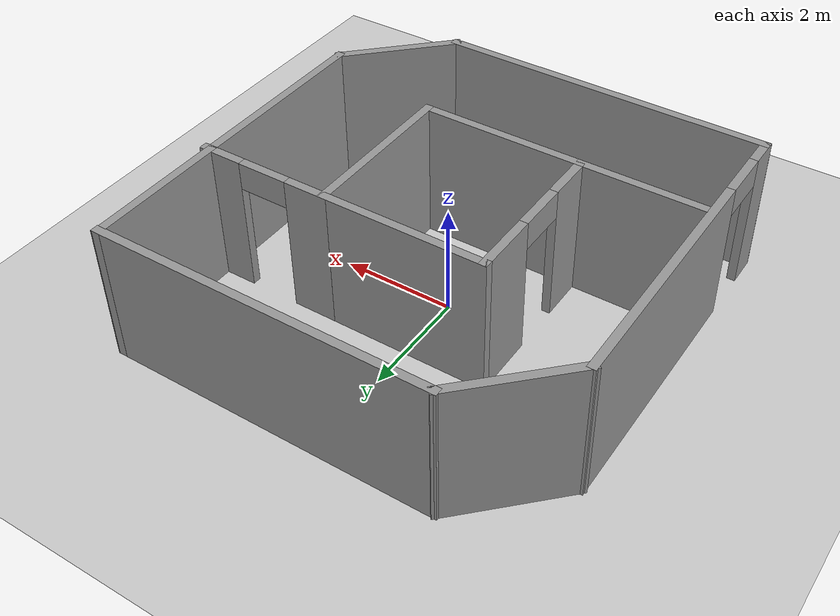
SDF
<sdf version="1.6">
 <world name="default">
  <light name="sun" type="directional">
   <pose>0 0 15 0 -0 0</pose>
   <diffuse>1 1 1 1</diffuse>
   <specular>0.1 0.1 0.1 1</specular>
   <attenuation>
    <range>1000</range>
    <constant>0.9</constant>
    <linear>0.01</linear>
    <quadratic>0.001</quadratic>
   </attenuation>
   <direction>-0.5 0.5 -1</direction>
  </light>
  <model name="ground_plane">
   <static>1</static>
   <link name="link">
    <collision name="collision">
     <geometry><plane><normal>0 0 1</normal><size>100 100</size></plane></geometry>
     <surface><friction><ode><mu>100</mu><mu2>50</mu2></ode></friction></surface>
    </collision>
    <visual name="visual">
     <transparency>1</transparency>
     <cast_shadows>0</cast_shadows>
     <geometry><plane><normal>0 0 1</normal><size>100 100</size></plane></geometry>
     <material>
      <script><uri>file://media/materials/scripts/gazebo.material</uri><name>Gazebo/Grey</name></script>
     </material>
    </visual>
   </link>
  </model>
  <gravity>0 0 -9.8</gravity>
  <magnetic_field>6e-06 2.3e-05 -4.2e-05</magnetic_field>
  <atmosphere type="adiabatic"/>
  <physics name="default_physics" default="0" type="ode">
   <max_step_size>0.001</max_step_size>
   <real_time_factor>1</real_time_factor>
   <real_time_update_rate>1000</real_time_update_rate>
  </physics>
  <scene><ambient>0.4 0.4 0.4 1</ambient><background>0.7 0.7 0.7 1</background><shadows>1</shadows></scene>
  <spherical_coordinates>
   <surface_model>EARTH_WGS84</surface_model>
   <latitude_deg>0</latitude_deg>
   <longitude_deg>0</longitude_deg>
   <elevation>0</elevation>
   <heading_deg>0</heading_deg>
  </spherical_coordinates>
  <model name="room">
   <pose>0.070263 -0.0221 0 0 -0 0</pose>
   <link name="Wall_0">
    <pose>-3.70428 -0.737462 0 0 0 -1.5708</pose>
    <visual name="Wall_0_Visual_0">
     <pose>-0.727979 0 1.25 0 -0 0</pose>
     <geometry><box><size>4.54404 0.15 2.5</size></box></geometry>
     <material>
      <script><uri>file://media/materials/scripts/gazebo.material</uri><name>Gazebo/Grey</name></script>
      <ambient>1 1 1 1</ambient>
     </material>
    </visual>
    <collision name="Wall_0_Collision_0">
     <geometry><box><size>4.54404 0.15 2.5</size></box></geometry>
     <pose>-0.727979 0 1.25 0 -0 0</pose>
    </collision>
    <visual name="Wall_0_Visual_1">
     <pose>2.72202 0 1.25 0 -0 0</pose>
     <geometry><box><size>0.555958 0.15 2.5</size></box></geometry>
     <material>
      <script><uri>file://media/materials/scripts/gazebo.material</uri><name>Gazebo/Grey</name></script>
      <ambient>1 1 1 1</ambient>
     </material>
    </visual>
    <collision name="Wall_0_Collision_1">
     <geometry><box><size>0.555958 0.15 2.5</size></box></geometry>
     <pose>2.72202 0 1.25 0 -0 0</pose>
    </collision>
    <visual name="Wall_0_Visual_2">
     <pose>1.99404 0 2.25 0 -0 0</pose>
     <geometry><box><size>0.9 0.15 0.5</size></box></geometry>
     <material>
      <script><uri>file://media/materials/scripts/gazebo.material</uri><name>Gazebo/Grey</name></script>
      <ambient>1 1 1 1</ambient>
     </material>
    </visual>
    <collision name="Wall_0_Collision_2">
     <geometry><box><size>0.9 0.15 0.5</size></box></geometry>
     <pose>1.99404 0 2.25 0 -0 0</pose>
    </collision>
   </link>
   <link name="Wall_1">
    <collision name="Wall_1_Collision">
     <geometry><box><size>6 0.15 2.5</size></box></geometry>
     <pose>0 0 1.25 0 -0 0</pose>
    </collision>
    <visual name="Wall_1_Visual">
     <pose>0 0 1.25 0 -0 0</pose>
     <geometry><box><size>6 0.15 2.5</size></box></geometry>
     <material>
      <script><uri>file://media/materials/scripts/gazebo.material</uri><name>Gazebo/Grey</name></script>
      <ambient>1 1 1 1</ambient>
     </material>
    </visual>
    <pose>-0.779277 -3.67246 0 0 -0 0</pose>
   </link>
   <link name="Wall_10">
    <collision name="Wall_10_Collision">
     <geometry><box><size>3 0.15 2.5</size></box></geometry>
     <pose>0 0 1.25 0 -0 0</pose>
    </collision>
    <visual name="Wall_10_Visual">
     <pose>0 0 1.25 0 -0 0</pose>
     <geometry><box><size>3 0.15 2.5</size></box></geometry>
     <material>
      <script><uri>file://media/materials/scripts/gazebo.material</uri><name>Gazebo/Grey</name></script>
      <ambient>1 1 1 1</ambient>
     </material>
    </visual>
    <pose>1.40283 -0.198611 0 0 -0 1.5708</pose>
   </link>
   <link name="Wall_11">
    <collision name="Wall_11_Collision">
     <geometry><box><size>3 0.15 2.5</size></box></geometry>
     <pose>0 0 1.25 0 -0 0</pose>
    </collision>
    <visual name="Wall_11_Visual">
     <pose>0 0 1.25 0 -0 0</pose>
     <geometry><box><size>3 0.15 2.5</size></box></geometry>
     <material>
      <script><uri>file://media/materials/scripts/gazebo.material</uri><name>Gazebo/Grey</name></script>
      <ambient>1 1 1 1</ambient>
     </material>
    </visual>
    <pose>-0.039657 1.22639 0 0 -0 3.14159</pose>
   </link>
   <link name="Wall_13">
    <collision name="Wall_13_Collision">
     <geometry><box><size>2.25 0.15 2.5</size></box></geometry>
     <pose>0 0 1.25 0 -0 0</pose>
    </collision>
    <visual name="Wall_13_Visual">
     <pose>0 0 1.25 0 -0 0</pose>
     <geometry><box><size>2.25 0.15 2.5</size></box></geometry>
     <material>
      <script><uri>file://media/materials/scripts/gazebo.material</uri><name>Gazebo/Grey</name></script>
      <ambient>1 1 1 1</ambient>
     </material>
    </visual>
    <pose>-2.51466 -1.62361 0 0 -0 0</pose>
   </link>
   <link name="Wall_15">
    <pose>2.56034 1.22639 0 0 -0 0</pose>
    <visual name="Wall_15_Visual_0">
     <pose>-0.851143 0 1.25 0 -0 0</pose>
     <geometry><box><size>0.797714 0.15 2.5</size></box></geometry>
     <material>
      <script><uri>file://media/materials/scripts/gazebo.material</uri><name>Gazebo/Grey</name></script>
      <ambient>1 1 1 1</ambient>
     </material>
    </visual>
    <collision name="Wall_15_Collision_0">
     <geometry><box><size>0.797714 0.15 2.5</size></box></geometry>
     <pose>-0.851143 0 1.25 0 -0 0</pose>
    </collision>
    <visual name="Wall_15_Visual_1">
     <pose>0.848857 0 1.25 0 -0 0</pose>
     <geometry><box><size>0.802286 0.15 2.5</size></box></geometry>
     <material>
      <script><uri>file://media/materials/scripts/gazebo.material</uri><name>Gazebo/Grey</name></script>
      <ambient>1 1 1 1</ambient>
     </material>
    </visual>
    <collision name="Wall_15_Collision_1">
     <geometry><box><size>0.802286 0.15 2.5</size></box></geometry>
     <pose>0.848857 0 1.25 0 -0 0</pose>
    </collision>
    <visual name="Wall_15_Visual_2">
     <pose>-0.002286 0 2.25 0 -0 0</pose>
     <geometry><box><size>0.9 0.15 0.5</size></box></geometry>
     <material>
      <script><uri>file://media/materials/scripts/gazebo.material</uri><name>Gazebo/Grey</name></script>
      <ambient>1 1 1 1</ambient>
     </material>
    </visual>
    <collision name="Wall_15_Collision_2">
     <geometry><box><size>0.9 0.15 0.5</size></box></geometry>
     <pose>-0.002286 0 2.25 0 -0 0</pose>
    </collision>
   </link>
   <link name="Wall_2">
    <collision name="Wall_2_Collision">
     <geometry><box><size>2.26945 0.15 2.5</size></box></geometry>
     <pose>0 0 1.25 0 -0 0</pose>
    </collision>
    <visual name="Wall_2_Visual">
     <pose>0 0 1.25 0 -0 0</pose>
     <geometry><box><size>2.26945 0.15 2.5</size></box></geometry>
     <material>
      <script><uri>file://media/materials/scripts/gazebo.material</uri><name>Gazebo/Grey</name></script>
      <ambient>1 1 1 1</ambient>
     </material>
    </visual>
    <pose>2.89693 -2.925 0 0 -0 0.782899</pose>
   </link>
   <link name="Wall_3">
    <collision name="Wall_3_Collision">
     <geometry><box><size>6 0.15 2.5</size></box></geometry>
     <pose>0 0 1.25 0 -0 0</pose>
    </collision>
    <visual name="Wall_3_Visual">
     <pose>0 0 1.25 0 -0 0</pose>
     <geometry><box><size>6 0.15 2.5</size></box></geometry>
     <material>
      <script><uri>file://media/materials/scripts/gazebo.material</uri><name>Gazebo/Grey</name></script>
      <ambient>1 1 1 1</ambient>
     </material>
    </visual>
    <pose>3.64814 0.747462 0 0 -0 1.5708</pose>
   </link>
   <link name="Wall_4">
    <collision name="Wall_4_Collision">
     <geometry><box><size>6.03498 0.15 2.5</size></box></geometry>
     <pose>0 0 1.25 0 -0 0</pose>
    </collision>
    <visual name="Wall_4_Visual">
     <pose>0 0 1.25 0 -0 0</pose>
     <geometry><box><size>6.03498 0.15 2.5</size></box></geometry>
     <material>
      <script><uri>file://media/materials/scripts/gazebo.material</uri><name>Gazebo/Grey</name></script>
      <ambient>1 1 1 1</ambient>
     </material>
    </visual>
    <pose>0.723137 3.67246 0 0 -0 3.14159</pose>
   </link>
   <link name="Wall_5">
    <collision name="Wall_5_Collision">
     <geometry><box><size>2.25 0.15 2.5</size></box></geometry>
     <pose>0 0 1.25 0 -0 0</pose>
    </collision>
    <visual name="Wall_5_Visual">
     <pose>0 0 1.25 0 -0 0</pose>
     <geometry><box><size>2.25 0.15 2.5</size></box></geometry>
     <material>
      <script><uri>file://media/materials/scripts/gazebo.material</uri><name>Gazebo/Grey</name></script>
      <ambient>1 1 1 1</ambient>
     </material>
    </visual>
    <pose>-2.96182 2.93 0 0 0 -2.35619</pose>
   </link>
   <link name="Wall_8">
    <pose>-1.46466 -0.198611 0 0 0 -1.5708</pose>
    <visual name="Wall_8_Visual_0">
     <pose>-0.915368 0 1.25 0 -0 0</pose>
     <geometry><box><size>1.16926 0.15 2.5</size></box></geometry>
     <material>
      <script><uri>file://media/materials/scripts/gazebo.material</uri><name>Gazebo/Grey</name></script>
      <ambient>1 1 1 1</ambient>
     </material>
    </visual>
    <collision name="Wall_8_Collision_0">
     <geometry><box><size>1.16926 0.15 2.5</size></box></geometry>
     <pose>-0.915368 0 1.25 0 -0 0</pose>
    </collision>
    <visual name="Wall_8_Visual_1">
     <pose>1.03463 0 1.25 0 -0 0</pose>
     <geometry><box><size>0.930735 0.15 2.5</size></box></geometry>
     <material>
      <script><uri>file://media/materials/scripts/gazebo.material</uri><name>Gazebo/Grey</name></script>
      <ambient>1 1 1 1</ambient>
     </material>
    </visual>
    <collision name="Wall_8_Collision_1">
     <geometry><box><size>0.930735 0.15 2.5</size></box></geometry>
     <pose>1.03463 0 1.25 0 -0 0</pose>
    </collision>
    <visual name="Wall_8_Visual_2">
     <pose>0.119265 0 2.25 0 -0 0</pose>
     <geometry><box><size>0.9 0.15 0.5</size></box></geometry>
     <material>
      <script><uri>file://media/materials/scripts/gazebo.material</uri><name>Gazebo/Grey</name></script>
      <ambient>1 1 1 1</ambient>
     </material>
    </visual>
    <collision name="Wall_8_Collision_2">
     <geometry><box><size>0.9 0.15 0.5</size></box></geometry>
     <pose>0.119265 0 2.25 0 -0 0</pose>
    </collision>
   </link>
   <link name="Wall_9">
    <collision name="Wall_9_Collision">
     <geometry><box><size>3.01749 0.15 2.5</size></box></geometry>
     <pose>0 0 1.25 0 -0 0</pose>
    </collision>
    <visual name="Wall_9_Visual">
     <pose>0 0 1.25 0 -0 0</pose>
     <geometry><box><size>3.01749 0.15 2.5</size></box></geometry>
     <material>
      <script><uri>file://media/materials/scripts/gazebo.material</uri><name>Gazebo/Grey</name></script>
      <ambient>1 1 1 1</ambient>
     </material>
    </visual>
    <pose>-0.030912 -1.62361 0 0 -0 0</pose>
   </link>
   <static>1</static>
  </model>
 </world>
</sdf>
